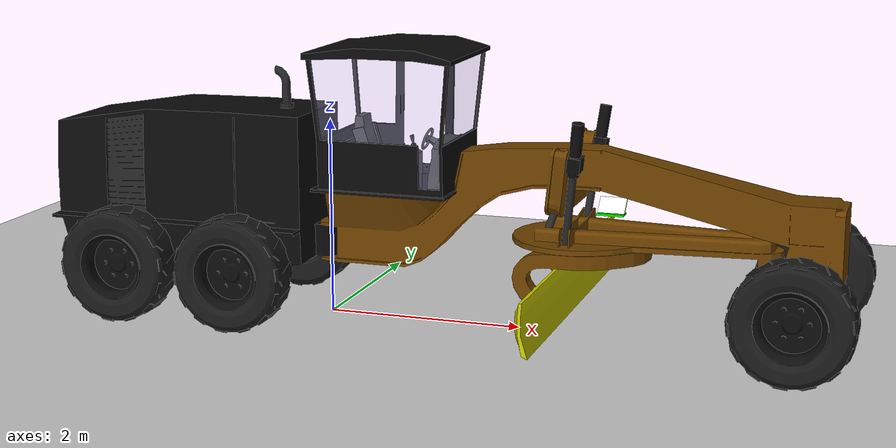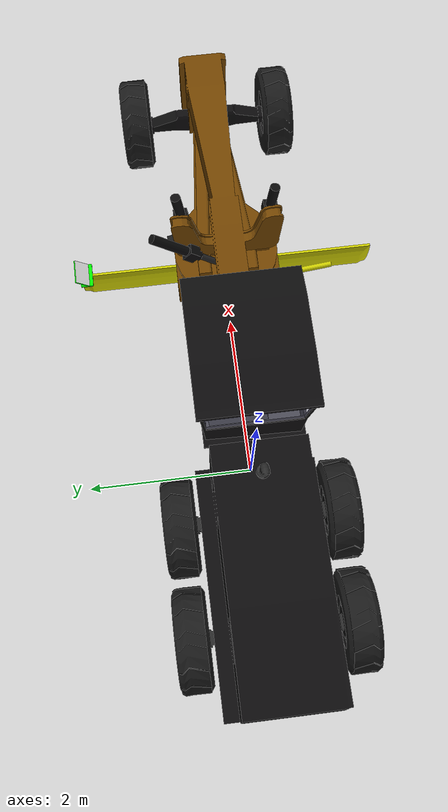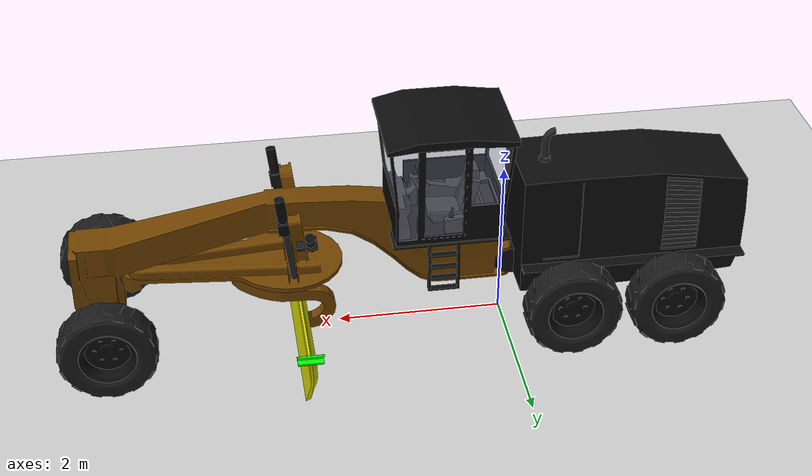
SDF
<?xml version="1.0" ?>
<sdf version="1.6">
  <world name="empty_world">
    <physics type="ode">
      <max_step_size>0.001</max_step_size>
      <real_time_factor>1</real_time_factor>
    </physics>
    <light type="directional" name="sun">
      <cast_shadows>true</cast_shadows>
      <pose>0 0 10 0 0 0</pose>
      <diffuse>0.8 0.8 0.8 1</diffuse>
      <specular>0.2 0.2 0.2 1</specular>
      <attenuation>
        <range>1000</range>
        <constant>0.9</constant>
        <linear>0.01</linear>
        <quadratic>0.001</quadratic>
      </attenuation>
      <direction>-0.5 0.1 -0.9</direction>
    </light>
    <model name="ground_plane">
      <static>true</static>
      <link name="link">
        <collision name="collision">
          <geometry>
            <plane>
              <normal>0 0 1</normal>
              <size>100 100</size>
            </plane>
          </geometry>
        </collision>
        <visual name="visual">
          <geometry>
            <plane>
              <normal>0 0 1</normal>
              <size>100 100</size>
            </plane>
          </geometry>
          <material>
            <ambient>0.8 0.8 0.8 1</ambient>
            <diffuse>0.8 0.8 0.8 1</diffuse>
            <specular>0.8 0.8 0.8 1</specular>
          </material>
        </visual>
      </link>
    </model>
    <!-- Include the Grader model -->
    <include>
      <uri>model://Grader</uri>
      <name>grader</name>
      <pose>0 0 0 0 0 0</pose>
    </include>
  </world>
</sdf>

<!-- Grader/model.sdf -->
<sdf version="1.6">
<model name="grader">
            <static>false</static>

            <!-- Main Body Link -->
            <link name="base_link">
            <pose>0 0 1.485 0 0 0</pose>
            <inertial>
                <mass>15000.0</mass>
                <inertia>
                <ixx>5000.0</ixx>
                <iyy>12000.0</iyy>
                <izz>10000.0</izz>
                <ixy>0</ixy>
                <ixz>0</ixz>
                <iyz>0</iyz>
                </inertia>
            </inertial>

            <!-- Main Frame -->
            <visual name="main_frame_visual">
                <pose>0 0 0 0 0 0</pose>
                <geometry>
                <mesh>
                    <uri>model://Grader/Geometry/MainFrame.stl</uri>
                    <scale>1 1 1</scale>
                </mesh>
                </geometry>
                <material>
                <ambient>0.438 0.260 0 1</ambient>
                <diffuse>0.438 0.260 0 1</diffuse>
                <specular>1.0 1.0 1.0 1</specular>
                </material>
            </visual>

            <collision name="main_frame_collision">
                <pose>0 0 0 0 0 0</pose>
                <geometry>
                <mesh>
                    <uri>model://Grader/Geometry/MainFrame.stl</uri>
                    <scale>1 1 1</scale>
                </mesh>
                </geometry>
            </collision>

            <!-- Engine -->
            <visual name="engine_visual">
                <pose>0 0 0 0 0 0</pose>
                <geometry>
                <mesh>
                    <uri>model://Grader/Geometry/Engine.stl</uri>
                    <scale>1 1 1</scale>
                </mesh>
                </geometry>
                <material>
                <ambient>0.043 0.041 0.043 1</ambient>
                <diffuse>0.043 0.041 0.043 1</diffuse>
                <specular>1.0 1.0 1.0 1</specular>
                </material>
            </visual>

            <!-- Engine Parts -->
            <visual name="engine_parts_visual">
                <pose>0 0 0 0 0 0</pose>
                <geometry>
                <mesh>
                    <uri>model://Grader/Geometry/EngineParts.stl</uri>
                    <scale>1 1 1</scale>
                </mesh>
                </geometry>
                <material>
                <ambient>0.154 0.154 0.154 1</ambient>
                <diffuse>0.154 0.154 0.154 1</diffuse>
                <specular>1.0 1.0 1.0 1</specular>
                </material>
            </visual>

            <!-- Booth -->
            <visual name="booth_visual">
                <pose>0 0 0 0 0 0</pose>
                <geometry>
                <mesh>
                    <uri>model://Grader/Geometry/Booth.stl</uri>
                    <scale>1 1 1</scale>
                </mesh>
                </geometry>ign topic -t /blade_rotation_joint/position -m ignition.msgs.Double -p "data: 0.785"
                <material>
                <ambient>0.043 0.041 0.043 1</ambient>
                <diffuse>0.043 0.041 0.043 1</diffuse>
                <specular>1.0 1.0 1.0 1</specular>
                </material>
            </visual>

            <!-- Booth Cap -->
            <visual name="booth_cap_visual">
                <pose>0 0 0 0 0 0</pose>
                <geometry>
                <mesh>
                    <uri>model://Grader/Geometry/BoothCap.stl</uri>
                    <scale>1 1 1</scale>
                </mesh>
                </geometry>
                <material>
                <ambient>0.043 0.041 0.043 1</ambient>
                <diffuse>0.043 0.041 0.043 1</diffuse>
                <specular>1.0 1.0 1.0 1</specular>
                </material>
            </visual>

            <!-- Glass -->
            <visual name="glass_visual">
                <pose>0 0 0 0 0 0</pose>
                <geometry>
                <mesh>
                    <uri>model://Grader/Geometry/Glass.stl</uri>
                    <scale>1 1 1</scale>
                </mesh>
                </geometry>
                <material>
                <ambient>0.8 0.8 1.0 0.3</ambient>
                <diffuse>0.8 0.8 1.0 0.3</diffuse>
                <specular>1.0 1.0 1.0 1</specular>
                </material>
            </visual>

            <!-- Interior -->
            <visual name="interior_visual">
                <pose>0 0 0 0 0 0</pose>
                <geometry>
                <mesh>
                    <uri>model://Grader/Geometry/Interior.stl</uri>
                    <scale>1 1 1</scale>
                </mesh>
                </geometry>
                <material>
                <ambient>0.2 0.2 0.2 1</ambient>
                <diffuse>0.2 0.2 0.2 1</diffuse>
                <specular>0.5 0.5 0.5 1</specular>
                </material>
            </visual>

            <!-- Panel -->
            <visual name="panel_visual">
                <pose>0 0 0 0 0 0</pose>
                <geometry>
                <mesh>
                    <uri>model://Grader/Geometry/Panel.stl</uri>
                    <scale>1 1 1</scale>
                </mesh>
                </geometry>
                <material>
                <ambient>0.1 0.1 0.1 1</ambient>
                <diffuse>0.1 0.1 0.1 1</diffuse>
                <specular>0.8 0.8 0.8 1</specular>
                </material>
            </visual>
            </link>

            <!-- Front Axle Link -->
            <link name="front_axle">
            <pose>0 0 1.485 0 0 0</pose>
            <inertial>
                <mass>1000.0</mass>
                <inertia>
                <ixx>100.0</ixx>
                <iyy>100.0</iyy>
                <izz>100.0</izz>
                <ixy>0</ixy>
                <ixz>0</ixz>
                <iyz>0</iyz>
                </inertia>
            </inertial>

            <visual name="front_axle_visual">
                <pose>0 0 0 0 0 0</pose>
                <geometry>
                <mesh>
                    <uri>model://Grader/Geometry/FrontAxle.stl</uri>
                    <scale>1 1 1</scale>
                </mesh>
                </geometry>
                <material>
                <ambient>0.043 0.041 0.043 1</ambient>
                <diffuse>0.043 0.041 0.043 1</diffuse>
                <specular>1.0 1.0 1.0 1</specular>
                </material>
            </visual>

            <collision name="front_axle_collision">
                <pose>0 0 0 0 0 0</pose>
                <geometry>
                <mesh>
                    <uri>model://Grader/Geometry/FrontAxle.stl</uri>
                    <scale>1 1 1</scale>
                </mesh>
                </geometry>
            </collision>
            </link>

            <!-- Tires Link -->
            <link name="tires">
            <pose>0 0 1.485 0 0 0</pose>
            <inertial>
                <mass>800.0</mass>
                <inertia>
                <ixx>200.0</ixx>
                <iyy>200.0</iyy>
                <izz>200.0</izz>
                <ixy>0</ixy>
                <ixz>0</ixz>
                <iyz>0</iyz>
                </inertia>
            </inertial>

            <visual name="tires_visual">
                <pose>0 0 0 0 0 0</pose>
                <geometry>
                <mesh>
                    <uri>model://Grader/Geometry/Tires.stl</uri>
                    <scale>1 1 1</scale>
                </mesh>
                </geometry>
                <material>
                <ambient>0.1 0.1 0.1 1</ambient>
                <diffuse>0.1 0.1 0.1 1</diffuse>
                <specular>0.2 0.2 0.2 1</specular>
                </material>
            </visual>

            <collision name="tires_collision">
                <pose>0 0 0 0 0 0</pose>
                <geometry>
                <mesh>
                    <uri>model://Grader/Geometry/Tires.stl</uri>
                    <scale>1 1 1</scale>
                </mesh>
                </geometry>
                <surface>
                <friction>
                    <ode>
                    <mu>1.0</mu>
                    <mu2>1.0</mu2>
                    </ode>
                </friction>
                </surface>
            </collision>
            </link>

            <!-- Blade Frame Link (moving part) -->
            <link name="blade_frame">
            <pose>2.562 0 0.943 1.5708 0 3.1415</pose>
            <inertial>
                <mass>500.0</mass>
                <inertia>
                <ixx>50.0</ixx>
                <iyy>50.0</iyy>
                <izz>50.0</izz>
                <ixy>0</ixy>
                <ixz>0</ixz>
                <iyz>0</iyz>
                </inertia>
            </inertial>

            <visual name="blade_frame_visual">
                <pose>0 0 0 0 0 0</pose>
                <geometry>
                <mesh>
                    <uri>model://Grader/Geometry/BladeFrame.stl</uri>
                    <scale>1 1 1</scale>
                </mesh>
                </geometry>
                <material>
                <ambient>0.438 0.260 0 1</ambient>
                <diffuse>0.438 0.260 0 1</diffuse>
                <specular>1.0 1.0 1.0 1</specular>
                </material>
            </visual>

            <collision name="blade_frame_collision">
        <pose>0 0 0 0 0 0</pose>
                <geometry>
                <mesh>
                    <uri>model://Grader/Geometry/BladeFrame.stl</uri>
                    <scale>1 1 1</scale>
                </mesh>
                </geometry>
            </collision>
            </link>

            <!-- Blade Frame Stationary Link (stationary parts) -->
            <link name="blade_frame_stationary">
            <pose>2.562 0 0.943 1.5708 0 3.1415</pose>
            <inertial>
                <mass>200.0</mass>
                <inertia>
                <ixx>20.0</ixx>
                <iyy>20.0</iyy>
                <izz>20.0</izz>
                <ixy>0</ixy>
                <ixz>0</ixz>
                <iyz>0</iyz>
                </inertia>
            </inertial>

            <visual name="blade_lever_mount_visual">
                <pose>0 0 0 0 0 0</pose>
                <geometry>
                    <mesh>
                    <uri>model://Grader/Geometry/BladeLeverMount.stl</uri>
                    <scale>1 1 1</scale>
                    </mesh>
                </geometry>
                <material>
                    <ambient>0.154 0.154 0.154 1</ambient>
                    <diffuse>0.154 0.154 0.154 1</diffuse>
                    <specular>1.0 1.0 1.0 1</specular>
                </material>
            </visual>

            <visual name="blade_frame_rot_visual">
                <pose>0 0 0 0 0 0</pose>
                <geometry>
                <mesh>
                    <uri>model://Grader/Geometry/BladeFrameRot.stl</uri>
                    <scale>1 1 1</scale>
                </mesh>
                </geometry>
                <material>
                <ambient>0.438 0.260 0 1</ambient>
                <diffuse>0.438 0.260 0 1</diffuse>
                <specular>1.0 1.0 1.0 1</specular>
                </material>
            </visual>
            </link>

            <!-- Grader Blade Link -->
            <link name="grader_blade">
            <pose> 2.35 0 0.293 0 0 0</pose> <!-- Changed from 2.562 0 0.243 0 0 0 -->
            <inertial>
                <mass>300.0</mass>
                <inertia>
                <ixx>25.0</ixx>
                <iyy>25.0</iyy>
                <izz>25.0</izz>
                <ixy>0</ixy>
                <ixz>0</ixz>
                <iyz>0</iyz>
                </inertia>
            </inertial>

            <visual name="grader_blade_visual">
                <pose>0 0 0 0 0 0</pose>
                <geometry>
                <mesh>
                    <uri>model://Grader/Geometry/GraderBlade.stl</uri>
                    <scale>1 1 1</scale>
                </mesh>
                </geometry>
                <material>
                <ambient>0.8 0.8 0.0 1</ambient>
                <diffuse>0.8 0.8 0.0 1</diffuse>
                <specular>1.0 1.0 1.0 1</specular>
                </material>
            </visual>

            <collision name="grader_blade_collision">
                <pose>0 0 0 0 0 0</pose>
                <geometry>
                <mesh>
                    <uri>model://Grader/Geometry/GraderBlade.stl</uri>
                    <scale>1 1 1</scale>
                </mesh>
                </geometry>
            </collision>

            <!-- Bounding box visualisation (semi-transparent) -->
            </link>

            <!-- Planks on Blade Link -->
            <link name="planks_on_blade">
            <pose>2.525 1.76 0.812 0 0 0</pose>
            <inertial>
                <mass>0.0</mass>
                <inertia>
                <ixx>5.0</ixx>
                <iyy>5.0</iyy>
                <izz>5.0</izz>
                <ixy>0</ixy>
                <ixz>0</ixz>
                <iyz>0</iyz>
                </inertia>
            </inertial>

            <!-- Horizontal plank visual -->
            <visual name="plank_horizontal_visual">
                <pose>0 0 0 0 0 0</pose>
                <geometry>
                    <box>
                    <size>0.297 0.15 0.02</size>
                    </box>
                </geometry>
                <material>
                    <ambient>0.0 1.0 0.0 1</ambient>
                    <diffuse>0.0 1.0 0.0 1</diffuse>
                    <specular>0.0 1.0 0.0 1</specular>
                </material>
            </visual>

            <!-- Horizontal plank collision -->
            <collision name="plank_horizontal_collision">
                <pose>0 0 0 0 0 0</pose>
                <geometry>
                    <box>
                    <size>0.297 0.15 0.02</size>
                    </box>
                </geometry>
            </collision>

            <!-- Angled plank visual -->
            <visual name="plank_angled_visual">
                <pose>0 0.05 0.08 0.7854 0 0</pose>
                <geometry>
                    <box>
                    <size>0.297 0.210 0.02</size>
                    </box>
                </geometry>
                <material>
                    <ambient>0.0 1.0 0.0 1</ambient>
                    <diffuse>0.0 1.0 0.0 1</diffuse>
                    <specular>0.0 1.0 0.0 1</specular>
                </material>
            </visual>

            <!-- Angled plank collision -->
            <collision name="plank_angled_collision">
                <pose>0 0.05 0.08 0.7854 0 0</pose>
                <geometry>
                    <box>
                    <size>0.297 0.210 0.02</size>
                    </box>
                </geometry>
            </collision>

         <visual name="top_surface">
                <pose>0 0.043 0.089 0.7854 0 0</pose>
                <geometry>
                    <plane>
                    <normal>0 0 1</normal>
                    <size>0.297 0.210</size>
                    </plane>
                </geometry>
                <material>
                    <ambient>1.0 1.0 1.0 1</ambient>
                    <diffuse>1.0 1.0 1.0 1</diffuse>
                    <specular>0.5 0.5 0.5 1</specular>
                    <pbr>
                        <metal>
                            <albedo_map>/home/johan/Documents/masters/ros2_fortress_ws/markers/Aruco-1.jpg</albedo_map>
                        </metal>
                    </pbr>
                </material>
                </visual>
            </link>

            <!-- Hydraulics Link -->
            <link name="hydraulics">
            <pose>0 0 1.485 0 0 0</pose>
            <inertial>
                <mass>200.0</mass>
                <inertia>
                <ixx>10.0</ixx>
                <iyy>10.0</iyy>
                <izz>10.0</izz>
                <ixy>0</ixy>
                <ixz>0</ixz>
                <iyz>0</iyz>
                </inertia>
            </inertial>

                <visual name="adjust_blade_hydraulics_visual">
                <pose>0 0 0 0 0 0</pose>
                <geometry>
                    <mesh>
                    <uri>model://Grader/Geometry/AdjustBladeHydraulics.stl</uri>
                    <scale>1 1 1</scale>
                    </mesh>
                </geometry>
                <material>
                    <ambient>0.154 0.154 0.154 1</ambient>
                    <diffuse>0.154 0.154 0.154 1</diffuse>
                    <specular>1.0 1.0 1.0 1</specular>
                </material>
                </visual>

            <collision name="hydraulics_collision">
                <pose>0 0 0 0 0 0</pose>
                <geometry>
                <mesh>
                    <uri>model://Grader/Geometry/AdjustBladeHydraulics.stl</uri>
                    <scale>1 1 1</scale>
                </mesh>
                </geometry>
            </collision>
            </link>

            <!-- Camera Link -->
            <link name="camera_link">

            <!-- angles are roll 0, pitch 20, yaw 90-->
            <pose>2.5 0.65 1.6 0.0 0.349 1.5708</pose>

            <!-- angle is 20 and 115 deg-->
            <inertial>
                <mass>0.1</mass>
                <inertia>
                <ixx>0.001</ixx>
                <iyy>0.001</iyy>
                <izz>0.001</izz>
                <ixy>0</ixy>
                <ixz>0</ixz>
                <iyz>0</iyz>
                </inertia>
            </inertial>

            <!-- Small box to represent camera body -->
            <visual name="camera_visual">
                <pose>0 0 0 0 0 0</pose>
                <geometry>
                <box><size>0.1 0.1 0.05</size></box>
                </geometry>
                <material>
                <ambient>0.1 0.1 0.1 1</ambient>
                <diffuse>0.1 0.1 0.1 1</diffuse>
                </material>
            </visual>

            <sensor name="camera" type="camera">
                <pose>0 0 0 0 0 0</pose>
                <camera>
                <!-- 80 degrees -->
                <horizontal_fov>1.3962634</horizontal_fov>
                <image>
                    <width>1280</width>
                    <height>800</height>
                    <format>R8G8B8</format>
                </image>
                <clip>
                    <near>0.1</near>
                    <far>3</far>
                </clip>
                </camera>
                <always_on>1</always_on>
                <update_rate>30</update_rate>
                <visualize>true</visualize>
                <topic>/grader/camera</topic>
            </sensor>
            </link>

            <!-- Discs Link -->
            <link name="discs">
            <pose>0 0 1.485 0 0 0</pose>
            <inertial>
                <mass>100.0</mass>
                <inertia>
                <ixx>5.0</ixx>
                <iyy>5.0</iyy>
                <izz>5.0</izz>
                <ixy>0</ixy>
                <ixz>0</ixz>
                <iyz>0</iyz>
                </inertia>
            </inertial>

            <visual name="discs_visual">
                <pose>0 0 0 0 0 0</pose>
                <geometry>
                <mesh>
                    <uri>model://Grader/Geometry/Discs.stl</uri>
                    <scale>1 1 1</scale>
                </mesh>
                </geometry>
                <material>
                <ambient>0.043 0.041 0.043 1</ambient>
                <diffuse>0.043 0.041 0.043 1</diffuse>
                <specular>1.0 1.0 1.0 1</specular>
                </material>
            </visual>

            <collision name="discs_collision">
                <pose>0 0 0 0 0 0</pose>
                <geometry>
                <mesh>
                    <uri>model://Grader/Geometry/Discs.stl</uri>
                    <scale>1 1 1</scale>
                </mesh>
                </geometry>
            </collision>
            </link>

            <!-- Joints -->

            <!-- Fixed joint between base and front axle -->
            <joint name="base_to_front_axle" type="fixed">
            <parent>base_link</parent>
            <child>front_axle</child>
            </joint>

            <!-- Fixed joint between base and tires -->
            <joint name="base_to_tires" type="fixed">
            <parent>base_link</parent>
            <child>tires</child>
            </joint>

            <!-- Fixed joint between base and hydraulics -->
            <joint name="base_to_hydraulics" type="fixed">
            <parent>base_link</parent>
            <child>hydraulics</child>
            </joint>

            <!-- Fixed joint between base and discs -->
            <joint name="base_to_discs" type="fixed">
            <parent>base_link</parent>
            <child>discs</child>
            </joint>

            <!-- Fixed joint attaching camera to main frame (fixed to body) -->
            <joint name="base_link_to_camera" type="fixed">
            <parent>base_link</parent>
            <child>camera_link</child>
            </joint>

            <!-- Tilt joint for blade frame (based on kin file) -->
            <joint name="blade_tilt_joint" type="fixed">
            <parent>base_link</parent>
            <child>blade_frame_stationary</child>
            </joint>

            <!-- Fixed joint between blade_frame and grader_blade -->
            <joint name="blade_frame_to_grader_blade" type="fixed">
            <parent>blade_frame</parent>
            <child>grader_blade</child>
            </joint>

            <!-- Fixed joint between grader_blade and planks_on_blade -->
            <joint name="grader_blade_to_planks" type="fixed">
            <parent>grader_blade</parent>
            <child>planks_on_blade</child>
            </joint>

            <!-- Rotation joint for blade and blade_frame -->
            <joint name="blade_rotation_joint" type="revolute">
            <parent>blade_frame_stationary</parent>
            <child>blade_frame</child>
            <axis>
                <xyz>0 1 0</xyz>
                <limit>
                <lower>-3.14159</lower>
                <upper>3.14159</upper>
                </limit>
            </axis>
            </joint>

            <!-- plugins-->

            <!-- Sensors system: required to activate camera and other sensors -->
            <plugin
                filename="libgz-sim-sensors-system.so"
                name="gz::sim::systems::Sensors">
                <render_engine>ogre2</render_engine>
            </plugin>

            <!-- blade_rotation_joint-->
            <plugin
                filename="libgz-sim-joint-position-controller-system.so"
                name="gz::sim::systems::JointPositionController">

                <joint_name>blade_rotation_joint</joint_name>
                <!-- Position command topic -->
                <topic>/blade_rotation_joint/position</topic>
                <!-- Optional PID (highly recommended) -->
                <p_gain>25.0</p_gain>
                <i_gain>1.0</i_gain>
                <d_gain>100.0</d_gain>

            </plugin>

            <!-- Joint state publisher for blade_rotation_joint -->
            <plugin
                filename="gz-sim-joint-state-publisher-system"
                name="gz::sim::systems::JointStatePublisher">

                <joint_name>blade_rotation_joint</joint_name>
                <!-- State feedback topic -->
                <topic>/blade_rotation_joint/state</topic>

            </plugin>

        </model>
</sdf>
